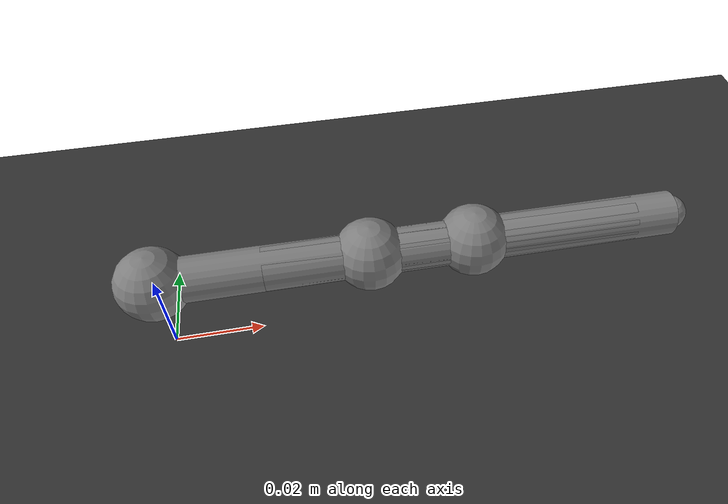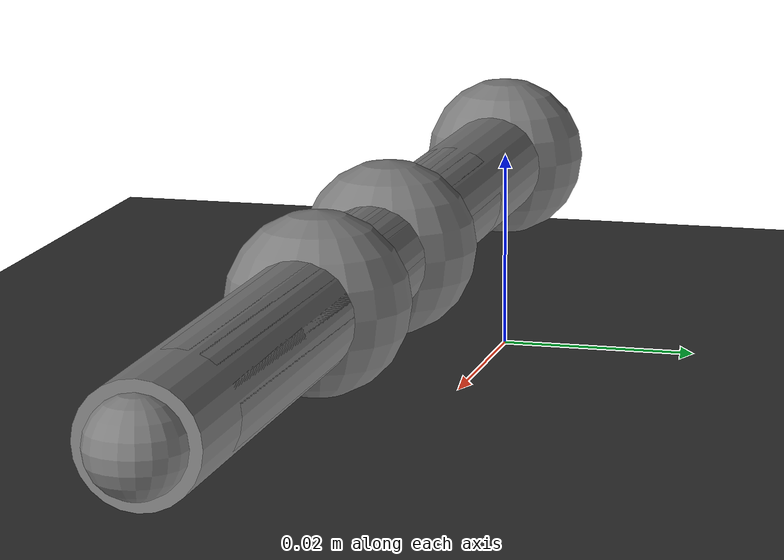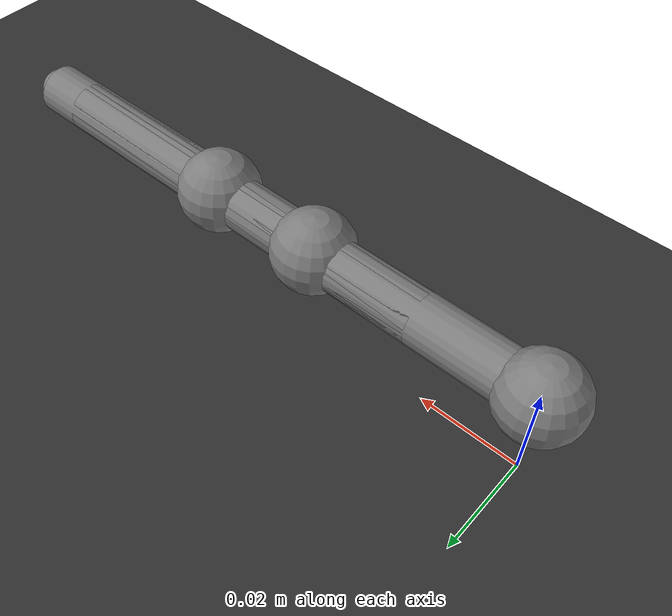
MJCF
<?xml version='1.0' encoding='UTF-8'?>
<mujoco>

    <option timestep="1e-4"/>
    <option gravity="0 0 -9.8"/>

    <asset>
        <texture type="skybox" builtin="gradient" rgb1="0.8 0.9 1" rgb2="0.2 0.3 0.6" width="265" height="256"/>
        <texture name="grid" type="2d" builtin="checker" rgb1="0.1 0.1 0.1" rgb2="0.3 0.3 0.3" width="300" height="300"/>
        <material name="grid" texture="grid" texrepeat="10 10" reflectance="0.1"/>
    </asset>

    <worldbody>
        <light pos="0 0 10" diffuse="0.8 0.8 0.8" specular="0.5 0.5 0.5"/>
        <light pos="2 2 5" diffuse="0.5 0.5 0.5" specular="0.3 0.3 0.3"/>
        <geom type="plane" size="0.5 0.5 0.1" material="grid"/>

        <!-- Фиксированные точки -->
        <site name="fixed_O" pos="0 0 0.02" size="0.008"/>
        <site name="fixed_C" pos="0.046 0 0.02" size="0.008"/>
        <site name="fixed_D" pos="0.069 0 0.02" size="0.008"/>

        <!-- ОСНОВНАЯ ЦЕПОЧКА O-A-B - КРИВОШИП -->
        <body name="OAB" pos="0 0 0.02" euler="0 0 0">
            <joint name="O" type="hinge" axis="0 -1 0" damping="0.1"/>
            <geom name="point O" type="sphere" pos="0 0 0" size="0.008"/>
            <geom name="link OA" type="cylinder" pos="0.023 0 0" size="0.005 0.023" euler="0 90 0"/>
            <site name="sA" size="0.004" pos="0.046 0 0"/>

            <body name="AB" pos="0.046 0 0" euler="0 0 0">
                <joint name="A" type="ball" damping="0.1"/>
                <geom name="point A" type="sphere" pos="0 0 0" size="0.008"/>
                <geom name="link AB" type="cylinder" pos="0.0299 0 0" size="0.005 0.0299" euler="0 90 0"/>
                <site name="sB" size="0.004" pos="0.0598 0 0"/>
            </body>
        </body>

        <!-- ЗВЕНО C-B - КОРОМЫСЛО -->
        <body name="CB" pos="0.046 0 0.02" euler="0 0 0">
            <joint name="C" type="hinge" axis="0 -1 0" damping="0.1"/>
            <geom name="point C" type="sphere" pos="0 0 0" size="0.008"/>
            <geom name="link CB" type="cylinder" pos="0.0345 0 0" size="0.005 0.0345" euler="0 90 0"/>
            <site name="sB_CB" size="0.004" pos="0.069 0 0"/>
        </body>

        <!-- ЗВЕНО D-B - ДОПОЛНИТЕЛЬНОЕ ЗВЕНО -->
        <body name="DB" pos="0.069 0 0.02" euler="0 0 0">
            <joint name="D" type="hinge" axis="0 -1 0" damping="0.1"/>
            <geom name="point D" type="sphere" pos="0 0 0" size="0.008"/>
            <geom name="link DB" type="cylinder" pos="-0.023 0 0" size="0.005 0.023" euler="0 90 0"/>
            <site name="sB_DB" size="0.004" pos="-0.046 0 0"/>
        </body>

    </worldbody>

    <equality>
        <!-- СОЕДИНЕНИЕ ВСЕХ ТРЕХ ЗВЕНЬЕВ В ТОЧКЕ B -->
        <connect site1="sB" site2="sB_CB"/>
        <connect site1="sB" site2="sB_DB"/>
    </equality>

</mujoco>
